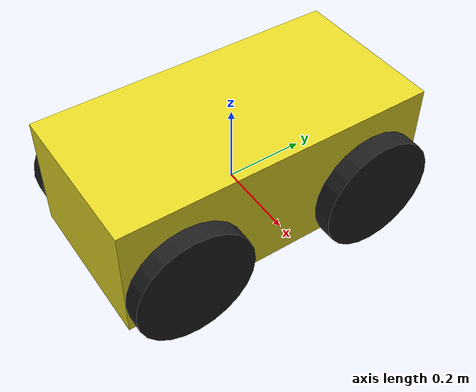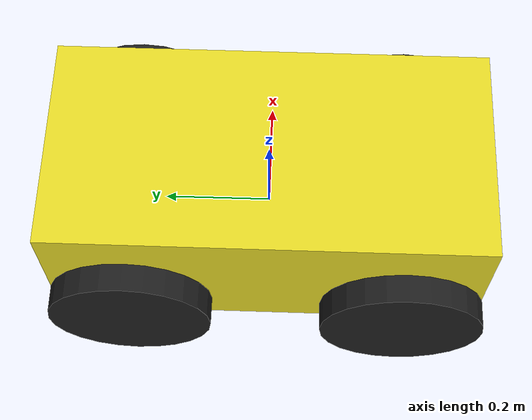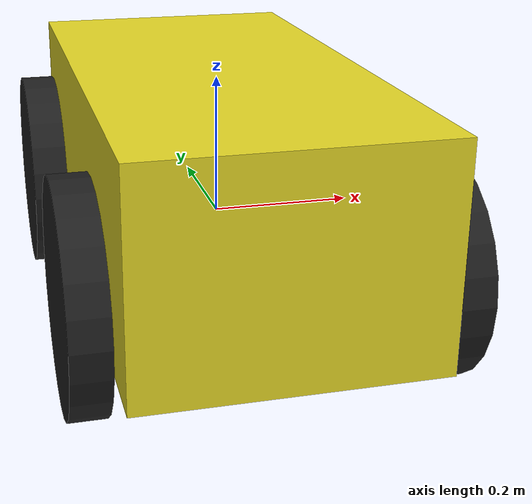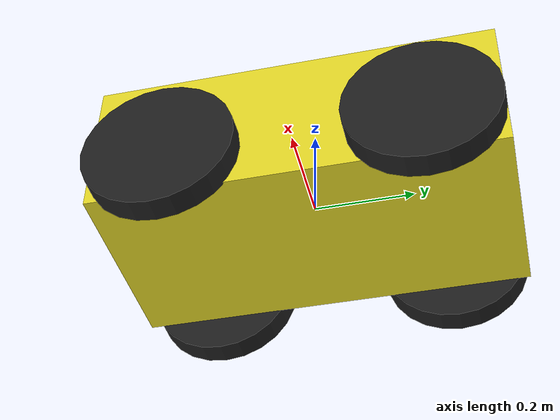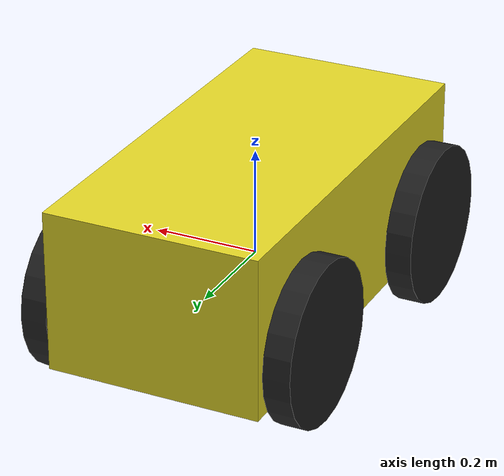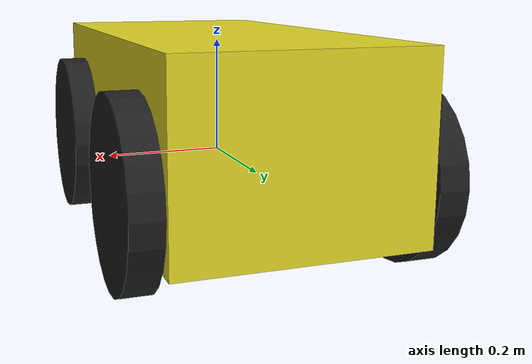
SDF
<?xml version='1.0'?>
<sdf version='1.6'>
  <model name='mobile_robot'>
    <link name='wheel_0'>
      <pose frame=''>-0.236758 -0.25 5e-06 0 1.56974 0</pose>
      <inertial>
        <mass>0.15</mass>
        <inertia>
          <ixx>0.145833</ixx>
          <ixy>0</ixy>
          <ixz>0</ixz>
          <iyy>0.145833</iyy>
          <iyz>0</iyz>
          <izz>0.125</izz>
        </inertia>
        <pose frame=''>0 0 0 0 -0 0</pose>
      </inertial>
      <self_collide>0</self_collide>
      <kinematic>0</kinematic>
      <visual name='visual'>
        <pose frame=''>0 0 0 0 -0 0</pose>
        <geometry>
          <cylinder>
            <radius>0.15</radius>
            <length>0.05</length>
          </cylinder>
        </geometry>
        <material>
          <lighting>1</lighting>
          <script>
            <uri>file://media/materials/scripts/gazebo.material</uri>
            <name>Gazebo/Black</name>
          </script>
          <shader type='pixel'>
            <normal_map>__default__</normal_map>
          </shader>
          <ambient>0.3 0.3 0.3 1</ambient>
          <diffuse>0.7 0.7 0.7 1</diffuse>
          <specular>0.01 0.01 0.01 1</specular>
          <emissive>0 0 0 1</emissive>
        </material>
        <transparency>0</transparency>
        <cast_shadows>1</cast_shadows>
      </visual>
      <collision name='collision'>
        <laser_retro>0</laser_retro>
        <max_contacts>10</max_contacts>
        <pose frame=''>0 0 0 0 -0 0</pose>
        <geometry>
          <cylinder>
            <radius>0.15</radius>
            <length>0.05</length>
          </cylinder>
        </geometry>
        <surface>
          <friction>
            <ode>
              <mu>1</mu>
              <mu2>1</mu2>
              <fdir1>0 0 0</fdir1>
              <slip1>0</slip1>
              <slip2>0</slip2>
            </ode>
            <torsional>
              <coefficient>1</coefficient>
              <patch_radius>0</patch_radius>
              <surface_radius>0</surface_radius>
              <use_patch_radius>1</use_patch_radius>
              <ode>
                <slip>0</slip>
              </ode>
            </torsional>
          </friction>
          <bounce>
            <restitution_coefficient>0</restitution_coefficient>
            <threshold>1e+06</threshold>
          </bounce>
          <contact>
            <collide_without_contact>0</collide_without_contact>
            <collide_without_contact_bitmask>1</collide_without_contact_bitmask>
            <collide_bitmask>1</collide_bitmask>
            <ode>
              <soft_cfm>0</soft_cfm>
              <soft_erp>0.2</soft_erp>
              <kp>1e+13</kp>
              <kd>1</kd>
              <max_vel>0.01</max_vel>
              <min_depth>0</min_depth>
            </ode>
            <bullet>
              <split_impulse>1</split_impulse>
              <split_impulse_penetration_threshold>-0.01</split_impulse_penetration_threshold>
              <soft_cfm>0</soft_cfm>
              <soft_erp>0.2</soft_erp>
              <kp>1e+13</kp>
              <kd>1</kd>
            </bullet>
          </contact>
        </surface>
      </collision>
    </link>
    <link name='body'>
      <pose frame=''>6e-06 0 0.064159 0 0.0001 0</pose>
      <inertial>
        <mass>1</mass>
        <inertia>
          <ixx>0.166667</ixx>
          <ixy>0</ixy>
          <ixz>0</ixz>
          <iyy>0.166667</iyy>
          <iyz>0</iyz>
          <izz>0.166667</izz>
        </inertia>
        <pose frame=''>0 0 0 0 -0 0</pose>
      </inertial>
      <self_collide>0</self_collide>
      <kinematic>0</kinematic>
      <gravity>1</gravity>
      <visual name='visual'>
        <pose frame=''>0 0 0 0 -0 0</pose>
        <geometry>
          <box>
            <size>0.4 0.8 0.3</size>
          </box>
        </geometry>
        <material>
          <lighting>1</lighting>
          <script>
            <uri>file://media/materials/scripts/gazebo.material</uri>
            <name>Gazebo/DarkYellow</name>
          </script>
          <shader type='pixel'>
            <normal_map>__default__</normal_map>
          </shader>
          <ambient>0.3 0.3 0.3 1</ambient>
          <diffuse>0.7 0.7 0.7 1</diffuse>
          <specular>0.01 0.01 0.01 1</specular>
          <emissive>0 0 0 1</emissive>
        </material>
        <transparency>0</transparency>
        <cast_shadows>1</cast_shadows>
      </visual>
      <collision name='collision'>
        <laser_retro>0</laser_retro>
        <max_contacts>10</max_contacts>
        <pose frame=''>0 0 0 0 -0 0</pose>
        <geometry>
          <box>
            <size>0.4 0.8 0.3</size>
          </box>
        </geometry>
        <surface>
          <friction>
            <ode>
              <mu>1</mu>
              <mu2>1</mu2>
              <fdir1>0 0 0</fdir1>
              <slip1>0</slip1>
              <slip2>0</slip2>
            </ode>
            <torsional>
              <coefficient>1</coefficient>
              <patch_radius>0</patch_radius>
              <surface_radius>0</surface_radius>
              <use_patch_radius>1</use_patch_radius>
              <ode>
                <slip>0</slip>
              </ode>
            </torsional>
          </friction>
          <bounce>
            <restitution_coefficient>0</restitution_coefficient>
            <threshold>1e+06</threshold>
          </bounce>
          <contact>
            <collide_without_contact>0</collide_without_contact>
            <collide_without_contact_bitmask>1</collide_without_contact_bitmask>
            <collide_bitmask>1</collide_bitmask>
            <ode>
              <soft_cfm>0</soft_cfm>
              <soft_erp>0.2</soft_erp>
              <kp>1e+13</kp>
              <kd>1</kd>
              <max_vel>0.01</max_vel>
              <min_depth>0</min_depth>
            </ode>
            <bullet>
              <split_impulse>1</split_impulse>
              <split_impulse_penetration_threshold>-0.01</split_impulse_penetration_threshold>
              <soft_cfm>0</soft_cfm>
              <soft_erp>0.2</soft_erp>
              <kp>1e+13</kp>
              <kd>1</kd>
            </bullet>
          </contact>
        </surface>
      </collision>
    </link>
    <link name='wheel_1'>
      <pose frame=''>0.220613 -0.25 -1e-06 0 1.56974 0</pose>
      <inertial>
        <mass>0.15</mass>
        <inertia>
          <ixx>0.145833</ixx>
          <ixy>0</ixy>
          <ixz>0</ixz>
          <iyy>0.145833</iyy>
          <iyz>0</iyz>
          <izz>0.125</izz>
        </inertia>
        <pose frame=''>0 0 0 0 -0 0</pose>
      </inertial>
      <self_collide>0</self_collide>
      <kinematic>0</kinematic>
      <visual name='visual'>
        <pose frame=''>0 0 0 0 -0 0</pose>
        <geometry>
          <cylinder>
            <radius>0.15</radius>
            <length>0.05</length>
          </cylinder>
        </geometry>
        <material>
          <lighting>1</lighting>
          <script>
            <uri>file://media/materials/scripts/gazebo.material</uri>
            <name>Gazebo/Black</name>
          </script>
          <shader type='pixel'>
            <normal_map>__default__</normal_map>
          </shader>
          <ambient>0.3 0.3 0.3 1</ambient>
          <diffuse>0.7 0.7 0.7 1</diffuse>
          <specular>0.01 0.01 0.01 1</specular>
          <emissive>0 0 0 1</emissive>
        </material>
        <transparency>0</transparency>
        <cast_shadows>1</cast_shadows>
      </visual>
      <collision name='collision'>
        <laser_retro>0</laser_retro>
        <max_contacts>10</max_contacts>
        <pose frame=''>0 0 0 0 -0 0</pose>
        <geometry>
          <cylinder>
            <radius>0.15</radius>
            <length>0.05</length>
          </cylinder>
        </geometry>
        <surface>
          <friction>
            <ode>
              <mu>1</mu>
              <mu2>1</mu2>
              <fdir1>0 0 0</fdir1>
              <slip1>0</slip1>
              <slip2>0</slip2>
            </ode>
            <torsional>
              <coefficient>1</coefficient>
              <patch_radius>0</patch_radius>
              <surface_radius>0</surface_radius>
              <use_patch_radius>1</use_patch_radius>
              <ode>
                <slip>0</slip>
              </ode>
            </torsional>
          </friction>
          <bounce>
            <restitution_coefficient>0</restitution_coefficient>
            <threshold>1e+06</threshold>
          </bounce>
          <contact>
            <collide_without_contact>0</collide_without_contact>
            <collide_without_contact_bitmask>1</collide_without_contact_bitmask>
            <collide_bitmask>1</collide_bitmask>
            <ode>
              <soft_cfm>0</soft_cfm>
              <soft_erp>0.2</soft_erp>
              <kp>1e+13</kp>
              <kd>1</kd>
              <max_vel>0.01</max_vel>
              <min_depth>0</min_depth>
            </ode>
            <bullet>
              <split_impulse>1</split_impulse>
              <split_impulse_penetration_threshold>-0.01</split_impulse_penetration_threshold>
              <soft_cfm>0</soft_cfm>
              <soft_erp>0.2</soft_erp>
              <kp>1e+13</kp>
              <kd>1</kd>
            </bullet>
          </contact>
        </surface>
      </collision>
    </link>
    <link name='wheel_2'>
      <pose frame=''>-0.232377 0.25 -1e-06 0 1.56974 0</pose>
      <inertial>
        <mass>0.15</mass>
        <inertia>
          <ixx>0.145833</ixx>
          <ixy>0</ixy>
          <ixz>0</ixz>
          <iyy>0.145833</iyy>
          <iyz>0</iyz>
          <izz>0.125</izz>
        </inertia>
        <pose frame=''>0 0 0 0 -0 0</pose>
      </inertial>
      <self_collide>0</self_collide>
      <kinematic>0</kinematic>
      <visual name='visual'>
        <pose frame=''>0 0 0 0 -0 0</pose>
        <geometry>
          <cylinder>
            <radius>0.15</radius>
            <length>0.05</length>
          </cylinder>
        </geometry>
        <material>
          <lighting>1</lighting>
          <script>
            <uri>file://media/materials/scripts/gazebo.material</uri>
            <name>Gazebo/Black</name>
          </script>
          <shader type='pixel'>
            <normal_map>__default__</normal_map>
          </shader>
          <ambient>0.3 0.3 0.3 1</ambient>
          <diffuse>0.7 0.7 0.7 1</diffuse>
          <specular>0.01 0.01 0.01 1</specular>
          <emissive>0 0 0 1</emissive>
        </material>
        <transparency>0</transparency>
        <cast_shadows>1</cast_shadows>
      </visual>
      <collision name='collision'>
        <laser_retro>0</laser_retro>
        <max_contacts>10</max_contacts>
        <pose frame=''>0 0 0 0 -0 0</pose>
        <geometry>
          <cylinder>
            <radius>0.15</radius>
            <length>0.05</length>
          </cylinder>
        </geometry>
        <surface>
          <friction>
            <ode>
              <mu>1</mu>
              <mu2>1</mu2>
              <fdir1>0 0 0</fdir1>
              <slip1>0</slip1>
              <slip2>0</slip2>
            </ode>
            <torsional>
              <coefficient>1</coefficient>
              <patch_radius>0</patch_radius>
              <surface_radius>0</surface_radius>
              <use_patch_radius>1</use_patch_radius>
              <ode>
                <slip>0</slip>
              </ode>
            </torsional>
          </friction>
          <bounce>
            <restitution_coefficient>0</restitution_coefficient>
            <threshold>1e+06</threshold>
          </bounce>
          <contact>
            <collide_without_contact>0</collide_without_contact>
            <collide_without_contact_bitmask>1</collide_without_contact_bitmask>
            <collide_bitmask>1</collide_bitmask>
            <ode>
              <soft_cfm>0</soft_cfm>
              <soft_erp>0.2</soft_erp>
              <kp>1e+13</kp>
              <kd>1</kd>
              <max_vel>0.01</max_vel>
              <min_depth>0</min_depth>
            </ode>
            <bullet>
              <split_impulse>1</split_impulse>
              <split_impulse_penetration_threshold>-0.01</split_impulse_penetration_threshold>
              <soft_cfm>0</soft_cfm>
              <soft_erp>0.2</soft_erp>
              <kp>1e+13</kp>
              <kd>1</kd>
            </bullet>
          </contact>
        </surface>
      </collision>
    </link>
    <link name='wheel_3'>
      <pose frame=''>0.22699 0.25 -1e-06 0 1.56974 0</pose>
      <inertial>
        <mass>0.15</mass>
        <inertia>
          <ixx>0.145833</ixx>
          <ixy>0</ixy>
          <ixz>0</ixz>
          <iyy>0.145833</iyy>
          <iyz>0</iyz>
          <izz>0.125</izz>
        </inertia>
        <pose frame=''>0 0 0 0 -0 0</pose>
      </inertial>
      <self_collide>0</self_collide>
      <kinematic>0</kinematic>
      <visual name='visual'>
        <pose frame=''>0 0 0 0 -0 0</pose>
        <geometry>
          <cylinder>
            <radius>0.15</radius>
            <length>0.05</length>
          </cylinder>
        </geometry>
        <material>
          <lighting>1</lighting>
          <script>
            <uri>file://media/materials/scripts/gazebo.material</uri>
            <name>Gazebo/Black</name>
          </script>
          <shader type='pixel'>
            <normal_map>__default__</normal_map>
          </shader>
          <ambient>0.3 0.3 0.3 1</ambient>
          <diffuse>0.7 0.7 0.7 1</diffuse>
          <specular>0.01 0.01 0.01 1</specular>
          <emissive>0 0 0 1</emissive>
        </material>
        <transparency>0</transparency>
        <cast_shadows>1</cast_shadows>
      </visual>
      <collision name='collision'>
        <laser_retro>0</laser_retro>
        <max_contacts>10</max_contacts>
        <pose frame=''>0 0 0 0 -0 0</pose>
        <geometry>
          <cylinder>
            <radius>0.15</radius>
            <length>0.05</length>
          </cylinder>
        </geometry>
        <surface>
          <friction>
            <ode>
              <mu>1</mu>
              <mu2>1</mu2>
              <fdir1>0 0 0</fdir1>
              <slip1>0</slip1>
              <slip2>0</slip2>
            </ode>
            <torsional>
              <coefficient>1</coefficient>
              <patch_radius>0</patch_radius>
              <surface_radius>0</surface_radius>
              <use_patch_radius>1</use_patch_radius>
              <ode>
                <slip>0</slip>
              </ode>
            </torsional>
          </friction>
          <bounce>
            <restitution_coefficient>0</restitution_coefficient>
            <threshold>1e+06</threshold>
          </bounce>
          <contact>
            <collide_without_contact>0</collide_without_contact>
            <collide_without_contact_bitmask>1</collide_without_contact_bitmask>
            <collide_bitmask>1</collide_bitmask>
            <ode>
              <soft_cfm>0</soft_cfm>
              <soft_erp>0.2</soft_erp>
              <kp>1e+13</kp>
              <kd>1</kd>
              <max_vel>0.01</max_vel>
              <min_depth>0</min_depth>
            </ode>
            <bullet>
              <split_impulse>1</split_impulse>
              <split_impulse_penetration_threshold>-0.01</split_impulse_penetration_threshold>
              <soft_cfm>0</soft_cfm>
              <soft_erp>0.2</soft_erp>
              <kp>1e+13</kp>
              <kd>1</kd>
            </bullet>
          </contact>
        </surface>
      </collision>
    </link>
    <static>0</static>
    <allow_auto_disable>1</allow_auto_disable>
  </model>
</sdf>
